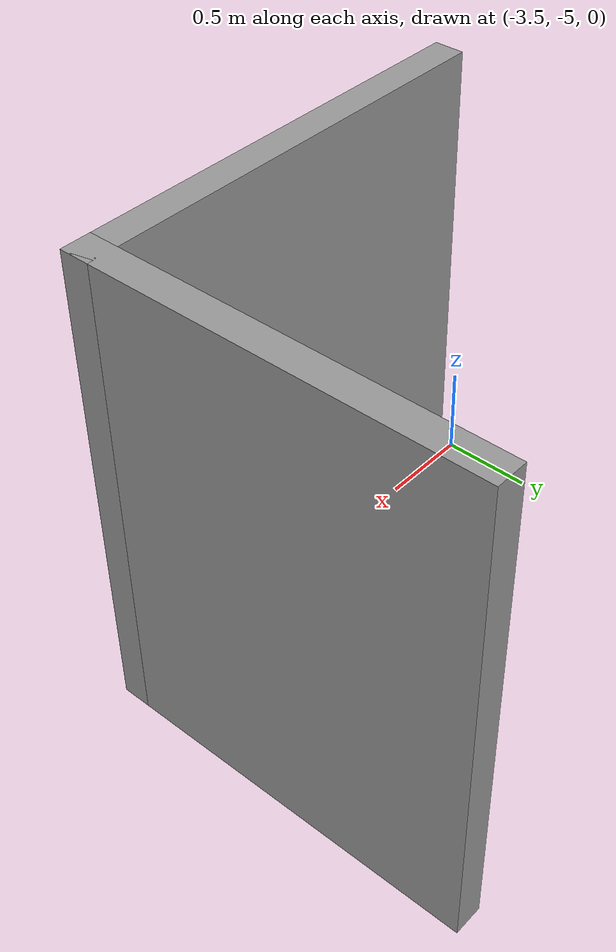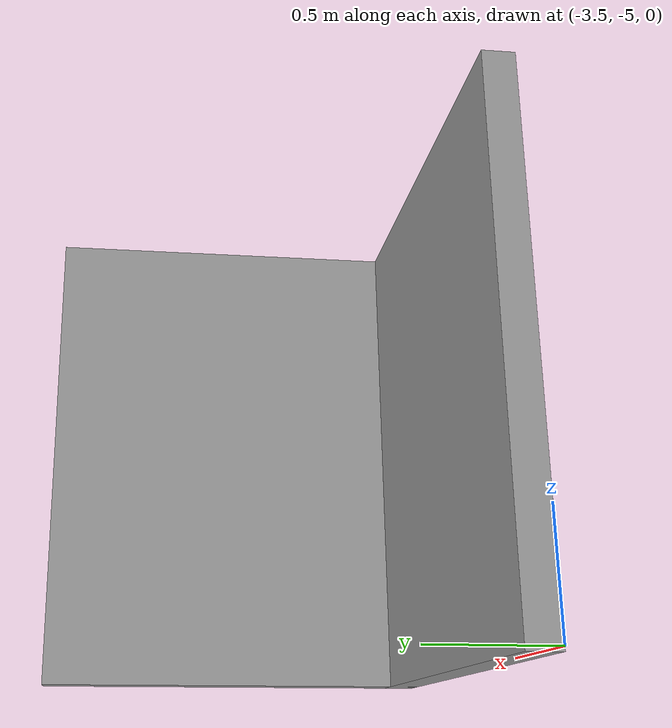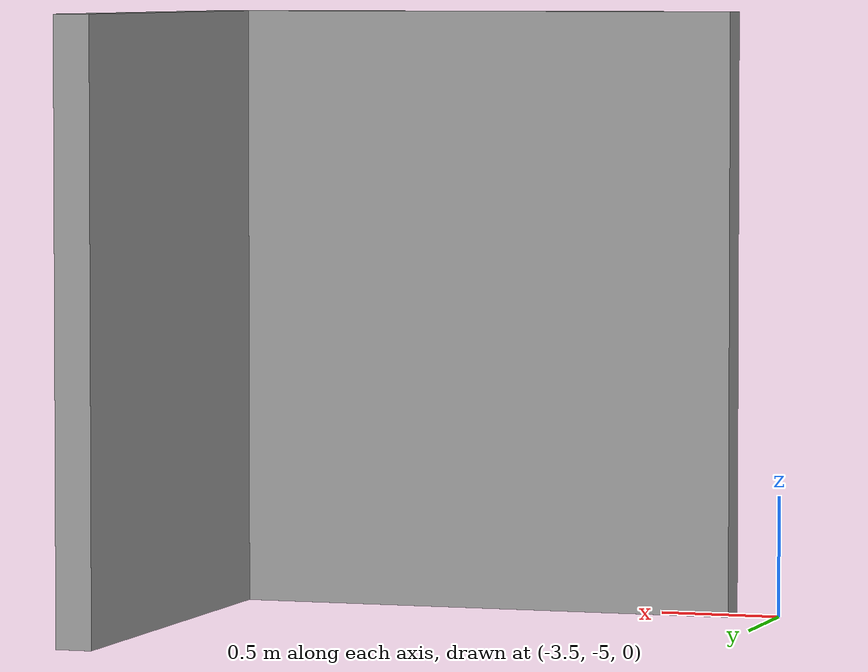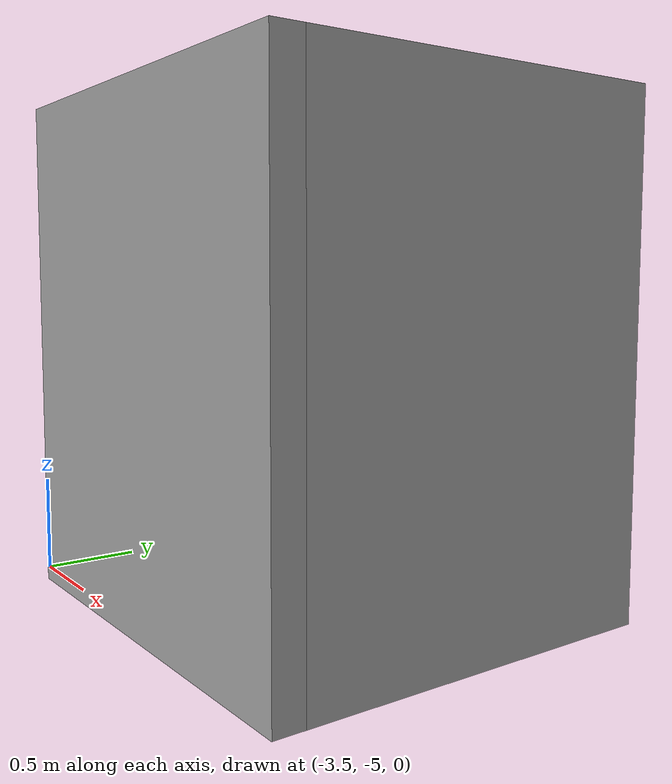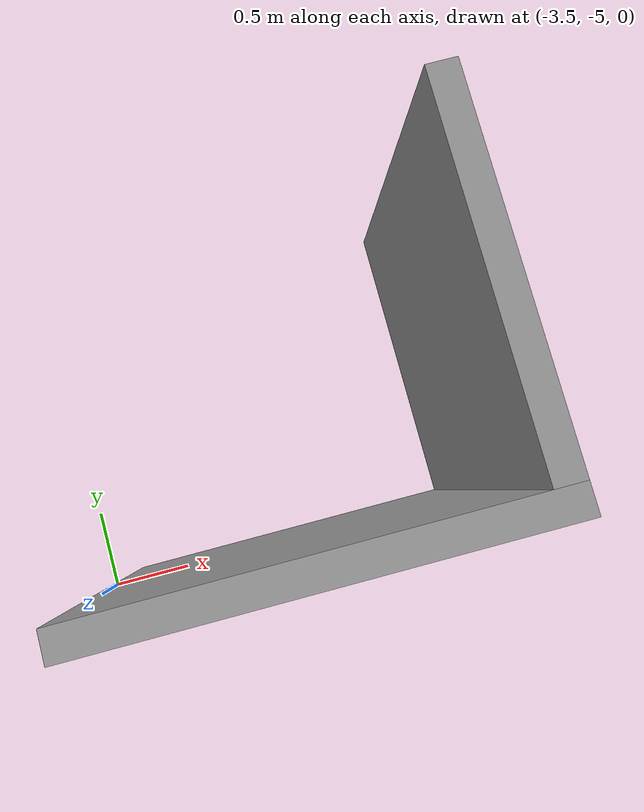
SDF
<?xml version='1.0'?>
<sdf version='1.7'>
  <model name='obstacle_L_shape_2_2'>
    <pose>-1.65085 -2.53997 0 0 -0 0</pose>
    <link name='Wall_13'>
      <collision name='Wall_13_Collision'>
        <geometry>
          <box>
            <size>2 0.15 2.5</size>
          </box>
        </geometry>
        <pose>0 0 1.25 0 -0 0</pose>
      </collision>
      <visual name='Wall_13_Visual'>
        <pose>0 0 1.25 0 -0 0</pose>
        <geometry>
          <box>
            <size>2 0.15 2.5</size>
          </box>
        </geometry>
        <material>
          <script>
            <uri>file://media/materials/scripts/gazebo.material</uri>
            <name>Gazebo/Grey</name>
          </script>
          <ambient>1 1 1 1</ambient>
        </material>
        <meta>
          <layer>0</layer>
        </meta>
      </visual>
      <pose>0.524153 -1.53997 0 0 -0 -1.5708</pose>
    </link>
    <link name='Wall_14'>
      <collision name='Wall_14_Collision'>
        <geometry>
          <box>
            <size>2.25 0.15 2.5</size>
          </box>
        </geometry>
        <pose>0 0 1.25 0 -0 0</pose>
      </collision>
      <visual name='Wall_14_Visual'>
        <pose>0 0 1.25 0 -0 0</pose>
        <geometry>
          <box>
            <size>2.25 0.15 2.5</size>
          </box>
        </geometry>
        <material>
          <script>
            <uri>file://media/materials/scripts/gazebo.material</uri>
            <name>Gazebo/Grey</name>
          </script>
          <ambient>1 1 1 1</ambient>
        </material>
        <meta>
          <layer>0</layer>
        </meta>
      </visual>
      <pose>-0.525847 -2.46497 0 0 -0 3.14159</pose>
    </link>
    <static>1</static>
  </model>
</sdf>
